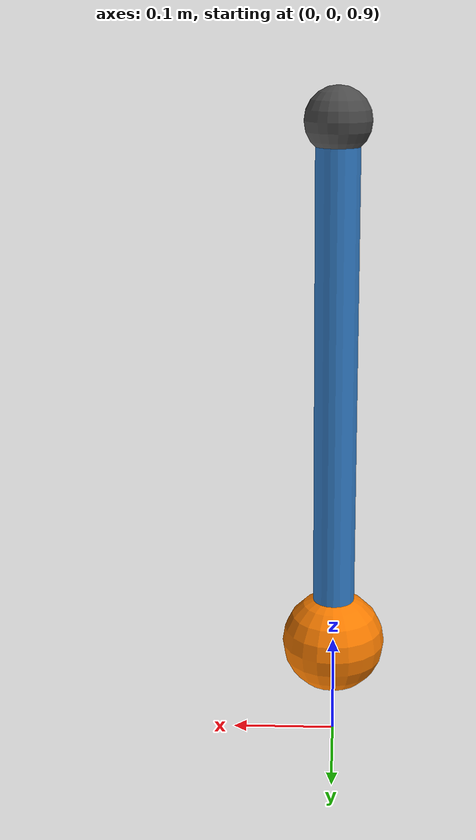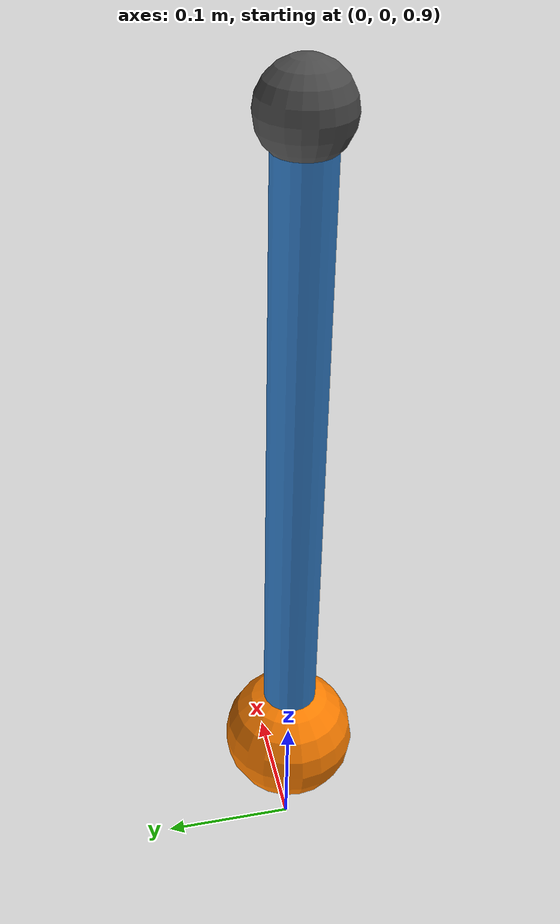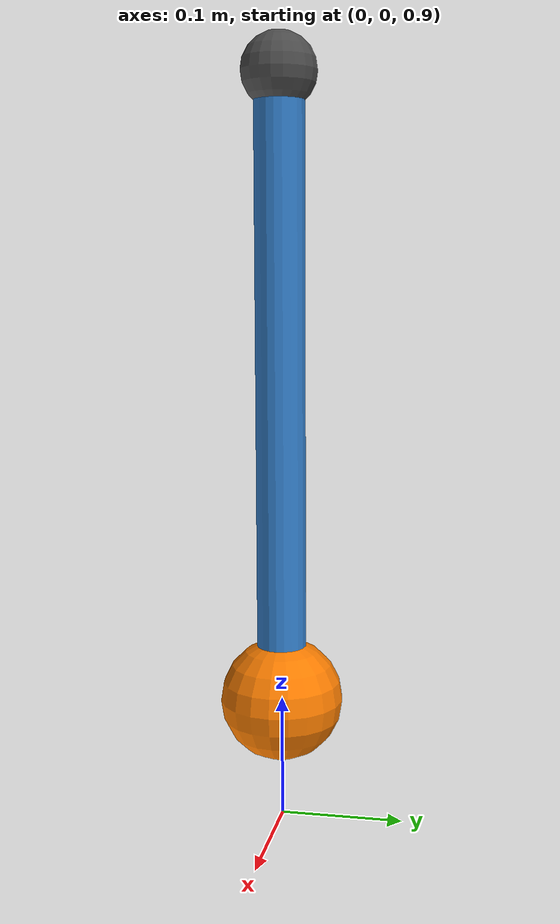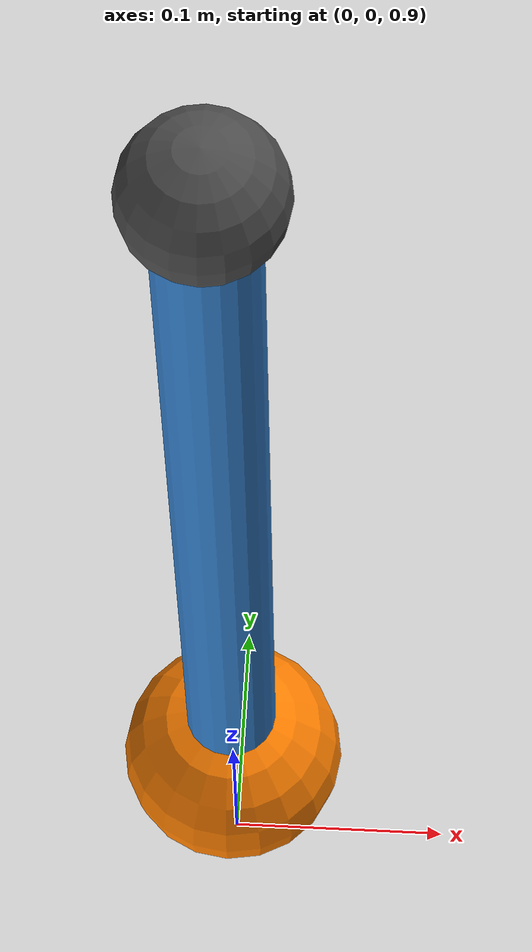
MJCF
<mujoco model="pendulum">
  <!--
  单摆模型：一个 hinge 关节连接的摆杆。
  用于理解 hinge 关节和 qpos 的关系。
  -->
  <compiler angle="radian" />
  <option timestep="0.002" gravity="0 0 -9.81" />

  <default>
    <joint damping="0.05" />
  </default>

  <worldbody>
    <light pos="0 0 3" dir="0 0 -1" />
    <geom type="plane" size="5 5 0.1" rgba="0.9 0.9 0.9 1" />

    <!-- 固定支点 -->
    <body name="pivot" pos="0 0 1.5">
      <geom type="sphere" size="0.03" rgba="0.3 0.3 0.3 1" />

      <!-- 摆杆 -->
      <body name="pendulum_arm" pos="0 0 0">
        <joint name="hinge" type="hinge" axis="0 1 0" />
        <geom type="capsule" fromto="0 0 0  0 0 -0.5" size="0.02"
              rgba="0.2 0.5 0.8 1" mass="0.5" />

        <!-- 摆锤 -->
        <body name="bob" pos="0 0 -0.5">
          <geom type="sphere" size="0.05" rgba="1 0.5 0 1" mass="1" />
        </body>
      </body>
    </body>
  </worldbody>

  <actuator>
    <motor name="hinge_motor" joint="hinge" gear="1"
           ctrllimited="true" ctrlrange="-5 5" />
  </actuator>

  <sensor>
    <jointpos name="hinge_pos" joint="hinge" />
    <jointvel name="hinge_vel" joint="hinge" />
  </sensor>
</mujoco>
